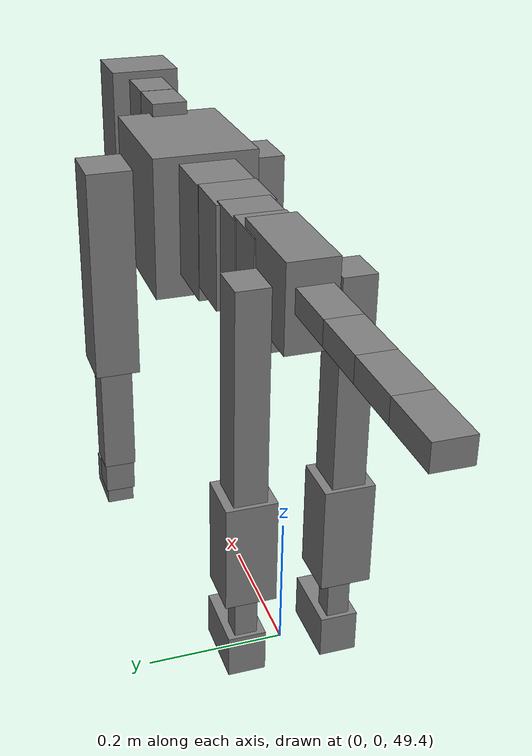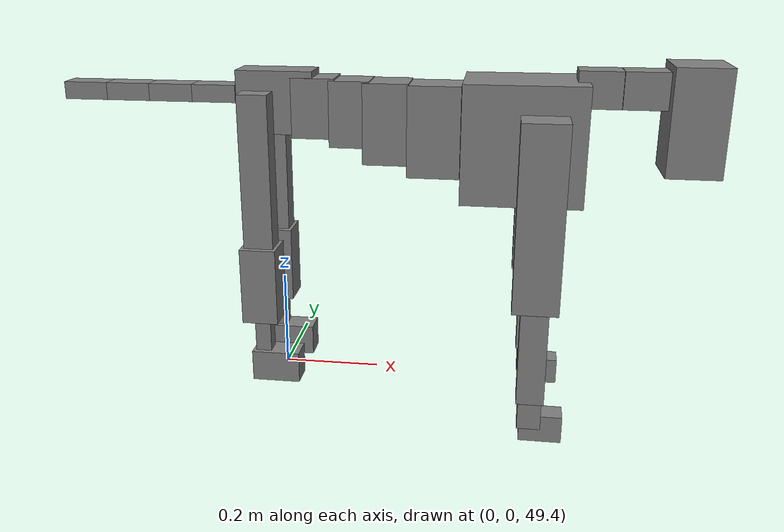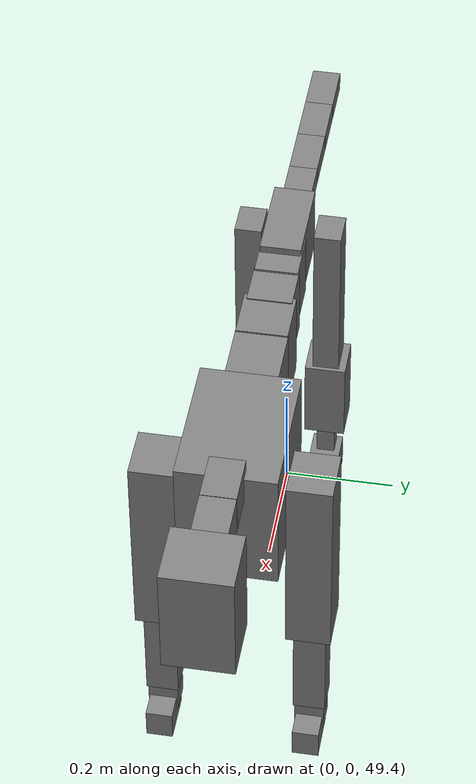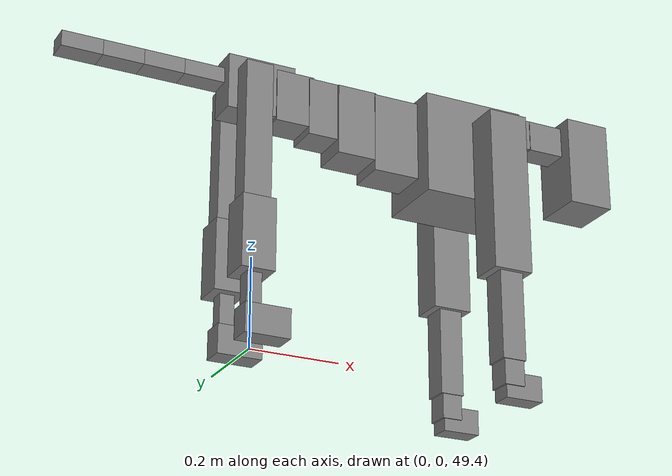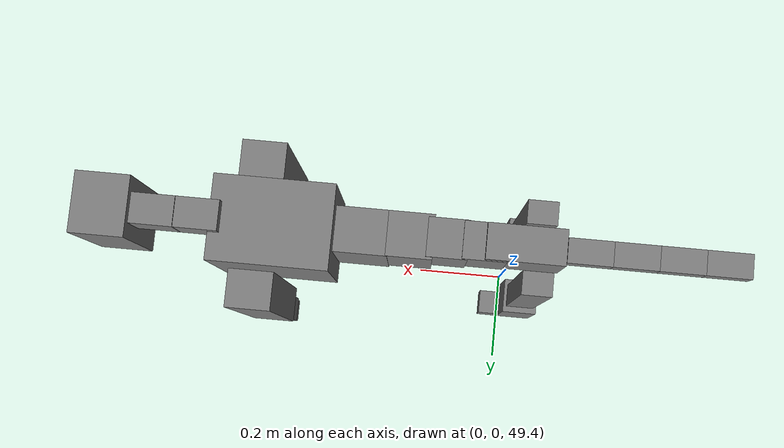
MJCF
<mujoco model="dog">

    <default>
        <joint armature="0.02" stiffness="1" damping="0.2" limited="true"/>
        <geom condim="3" friction="1 0.05 0.05" margin="0.01"/>
        <motor ctrllimited="true" ctrlrange="-1.0 1.0" forcelimited="true" gear="50"/>
    </default>

    <compiler inertiafromgeom="true" angle="radian"/>

    <option timestep="0.016" iterations="50" tolerance="1e-10" solver="Newton" jacobian="dense" cone="pyramidal"/>

    <size nconmax="20000" njmax="60000" nstack="5000000"/>
    <visual>
        <map force="0.1" zfar="30"/>
        <rgba haze="0.15 0.25 0.35 1"/>
        <quality shadowsize="2048"/>
        <global offwidth="800" offheight="800"/>
    </visual>

    <asset>
        <texture type="skybox" builtin="gradient" rgb1="0.3 0.5 0.7" rgb2="0 0 0" width="512" height="512"/>
        <texture name="texplane" type="2d" builtin="checker" rgb1=".2 .3 .4" rgb2=".1 0.15 0.2" width="512" height="512"
                 mark="cross" markrgb=".8 .8 .8"/>
        <texture name="texgeom" type="cube" builtin="flat" mark="cross" width="127" height="1278" rgb1="0.8 0.6 0.4"
                 rgb2="0.8 0.6 0.4" markrgb="1 1 1" random="0.01"/>

        <material name="matplane" reflectance="0.3" texture="texplane" texrepeat="1 1" texuniform="true"/>
        <material name="matgeom" texture="texgeom" texuniform="true" rgba="0.8 0.6 .4 1"/>
    </asset>

    <worldbody>
        <geom name="floor" pos="0 0 0" size="0 0 .25" type="plane" material="matplane" condim="3"/>

        <light directional="false" diffuse=".2 .2 .2" specular="0 0 0" pos="0 0 5" dir="0 0 -1" castshadow="false"/>
        <light mode="targetbodycom" target="torso" directional="false" diffuse=".8 .8 .8" specular="0.3 0.3 0.3"
               pos="0 0 4.0" dir="0 0 -1"/>

        <body name="root" pos="0 0 50">
            <freejoint name="root_1"/>
            <geom type="box" pos="0 0 -0.02" size="0.0774  0.0358  0.063" density="2030"/>

            <body name="spine1" pos="0.054 0 0">
                <joint name="spine1_y" axis="0 1 0" range="0 0.7" limited="true"/>
                <geom type="box" pos="0.02375 0 -0.03" size="0.04375  0.0375  0.05985" density="2030"/>

                <body name="spine2" pos="0.0612 0 0">
                    <joint name="spine2_y" axis="0 1 0" range="-0.15 0.15" limited="true"/>
                    <geom type="box" pos="0.03555  0  -0.04" size="0.04055  0.039  0.06615" density="2030"/>

                    <body name="spine3" pos="0.0730 0 0">
                        <joint name="spine3_y" axis="0 1 0" range="-0.15 0.15" limited="true"/>
                        <geom type="box" pos="0.03555  0  -0.057" size="0.04555  0.0445  0.081" density="2030"/>

                        <body name="spine4" pos="0.0780 0 0">
                            <joint name="spine4_y" axis="0 1 0" range="-0.15 0.15" limited="true"/>
                            <geom type="box" pos="0.05265  0  -0.07" size="0.05265  0.045  0.09135" density="2030"/>

                            <body name="torso" pos="0.1082 0 0">
                                <joint name="torso_y" axis="0 1 0" range="-0.15 0.15" limited="true"/>
                                <geom type="box" pos="0.11925  0  -0.085" size="0.11925  0.085  0.11745"
                                      density="2030"/>

                                <body name="neck1" pos="0.2160  0   0.0180">
                                    <joint name="neck1_y" axis="0 1 0" range="-1.2  -1" limited="true"/>
                                    <geom type="box" pos="0.0423  0  0" size="0.0423  0.03  0.036" density="2325"/>

                                    <body name="neck2" pos="0.0853  0  0">
                                        <joint name="neck2_y" axis="0 1 0" range="0.1  0" limited="true"/>
                                        <geom type="box" pos="0.0423  0  0" size="0.0423  0.03  0.036" density="2325"/>

                                        <body name="head" pos="0.0853  0  0">
                                            <joint name="head_y" axis="0 1 0" range="-0.3  -0.2" limited="true"/>
                                            <geom type="box" pos="0.0531  0  -0.055" size="0.0531  0.06  0.1044"
                                                  density="4030"/>

                                        </body>
                                    </body>
                                </body>

                                <body name="front_shoulder" pos="0.156  0   -0.0480">
                                    <joint name="front_shoulder_y" axis="0 1 0" range="-1 1.5" limited="true"/>
                                    <geom type="box" pos="0 0.13 -0.1585" size="0.0451  0.0386  0.1852" density="1158"/>
                                    <geom type="box" pos="0 -0.13 -0.1585" size="0.0451  0.0386  0.1852"
                                          density="1158"/>

                                    <body name="front_elbow" pos="0  0  -0.3171">
                                        <joint name="front_elbow_y" axis="0 1 0" range="-2 0" limited="true"/>
                                        <geom type="box" pos="0 0.13 -0.1116" size="0.0274  0.0280  0.1116"
                                              density="1081"/>
                                        <geom type="box" pos="0 -0.13 -0.1116" size="0.0274  0.0280  0.1116"
                                              density="1081"/>

                                        <body name="front_wrist" pos="0  0  -0.2233">
                                            <joint name="front_wrist_y" axis="0 1 0" range="-0.2 0" limited="true"/>
                                            <geom type="box" pos="0 0.13 -0.0212" size="0.0233  0.0259  0.0344"
                                                  density="1664"/>
                                            <geom type="box" pos="0 -0.13 -0.0212" size="0.0233  0.0259  0.0344"
                                                  density="1664"/>

                                            <body name="front_finger_end" pos="0  0  -0.0425">
                                                <joint name="front_finger_y" axis="0 1 0" range="-0.4 1"
                                                       limited="true"/>
                                                <geom type="box" pos="0.0233  0.13  -0.0130"
                                                      size="0.0427  0.0233  0.0280" density="1515"/>
                                                <geom type="box" pos="0.0233  -0.13  -0.0130"
                                                      size="0.0427  0.0233  0.0280" density="1515"/>

                                            </body>

                                        </body>
                                    </body>
                                </body>

                            </body>
                        </body>
                    </body>
                </body>
            </body>

            <body name="back_hip" pos="-0.03 0 -0.018">
                <joint name="back_hip_y" axis="0 1 0" range="-1.5 0.3" limited="true"/>
                <geom type="box" pos="0 0.07 -0.1531" size="0.0303  0.0238  0.1759" density="1154"/>
                <geom type="box" pos="0 -0.07 -0.1531" size="0.0303  0.0238  0.1759" density="1154"/>

                <body name="back_knee" pos="0  0  -0.3061">
                    <joint name="back_knee_y" axis="0 1 0" range="0 2.8" limited="true"/>
                    <geom type="box" pos="0 0.07 -0.0644" size="0.0371  0.0366  0.0799" density="1227"/>
                    <geom type="box" pos="0 -0.07 -0.0644" size="0.0371  0.0366  0.0799" density="1227"/>

                    <body name="back_ankle" pos="0  0  -0.1287">
                        <joint name="back_ankle_y" axis="0 1 0" range="-2.2 0" limited="true"/>
                        <geom type="box" pos="0 0.07 -0.0504" size="0.0164  0.0164  0.0616" density="1284"/>
                        <geom type="box" pos="0 -0.07 -0.0504" size="0.0164  0.0164  0.0616" density="1284"/>

                        <body name="back_toe_end" pos="0  0  -0.1007">
                            <joint name="back_toe_y" axis="0 1 0" range="-0.4 1" limited="true"/>
                            <geom type="box" pos="0.0273  0.07  -0.0173" size="0.0501  0.0273  0.0323" density="1515"/>
                            <geom type="box" pos="0.0273  -0.07  -0.0173" size="0.0501  0.0273  0.0323" density="1515"/>

                        </body>
                    </body>
                </body>
            </body>

            <body name="tail1" pos="-0.074 0 -0.006">
                <joint name="tail1_y" axis="0 1 0" range="-0.2 0.2" limited="true"/>
                <geom type="box" pos="-0.0536  0  0" size="0.045  0.025  0.0175" density="1587"/>

                <body name="tail2" pos="-0.09 0 0">
                    <joint name="tail2_y" axis="0 1 0" range="-0.2 0.2" limited="true"/>
                    <geom type="box" pos="-0.0536  0  0" size="0.045  0.025  0.0175" density="1587"/>

                    <body name="tail3" pos="-0.09 0 0">
                        <joint name="tail3_y" axis="0 1 0" range="-0.2 0.2" limited="true"/>
                        <geom type="box" pos="-0.0536  0  0" size="0.045  0.025  0.0175" density="1587"/>

                        <body name="tail4" pos="-0.09 0 0">
                            <joint name="tail4_y" axis="0 1 0" range="-0.2 0.2" limited="true"/>
                            <geom type="box" pos="-0.0536  0  0" size="0.045  0.025  0.0175" density="1587"/>

                        </body>
                    </body>
                </body>
            </body>
        </body>
    </worldbody>

    <actuator>
        <motor joint="spine1_y" forcerange="-150 150     "/>
        <motor joint="spine2_y" forcerange="-150 150     "/>
        <motor joint="spine3_y" forcerange="-150 150     "/>
        <motor joint="spine4_y" forcerange="-150 150     "/>
        <motor joint="torso_y" forcerange="-150 150     "/>
        <motor joint="neck1_y" forcerange="-100 100       "/>
        <motor joint="neck2_y" forcerange="-100 100       "/>
        <motor joint="head_y" forcerange="-150 150       "/>
        <motor joint="front_shoulder_y" forcerange="-193.48 163.61"/>
        <motor joint="front_elbow_y" forcerange="-139.49 163.97"/>
        <motor joint="front_wrist_y" forcerange="-138.24 68.65"/>
        <motor joint="front_finger_y" forcerange="-61.88 22.20"/>
        <motor joint="back_hip_y" forcerange="-257.22 259.81"/>
        <motor joint="back_knee_y" forcerange="-395.97 335.88"/>
        <motor joint="back_angle_y" forcerange="-61.60 101.11"/>
        <motor joint="back_toe_y" forcerange="-110.74 27.94"/>
        <motor joint="tail1_y" forcerange="-50 50     "/>
        <motor joint="tail2_y" forcerange="-50 50     "/>
        <motor joint="tail3_y" forcerange="-50 50     "/>
        <motor joint="tail4_y" forcerange="-50 50     "/>
    </actuator>
</mujoco>
